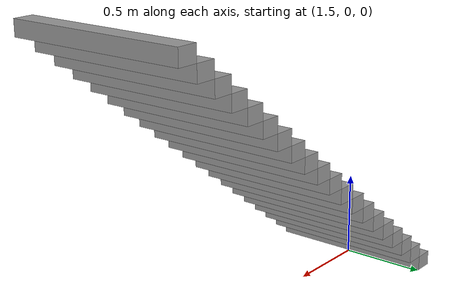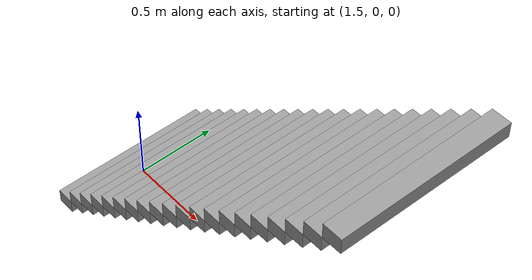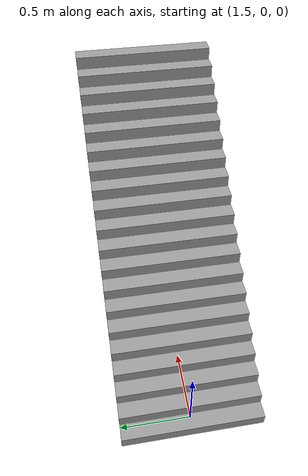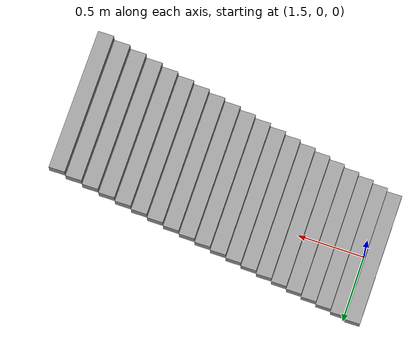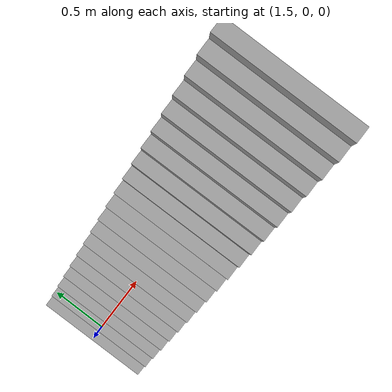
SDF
<?xml version='1.0'?>
<sdf version='1.7'>
  <model name='scaled_stairs'>
    <pose>1.8125 0 0 0 -0 0</pose>
    <link name='Stairs_1'>
      <visual name='Stairs_1_Visual_0'>
        <pose>-0.38125 -0 0.04375 0 -0 1.5708</pose>
        <geometry>
          <box>
            <size>1 0.1125 0.0875</size>
          </box>
        </geometry>
        <material>
          <script>
            <uri>file://media/materials/scripts/gazebo.material</uri>
            <name>Gazebo/Grey</name>
          </script>
          <ambient>1 1 1 1</ambient>
        </material>
        <meta>
          <layer>0</layer>
        </meta>
      </visual>
      <collision name='Stairs_1_Collision_0'>
        <geometry>
          <box>
            <size>1 0.1125 0.0875</size>
          </box>
        </geometry>
        <pose>-0.38125 -0 0.04375 0 -0 1.5708</pose>
      </collision>
      <visual name='Stairs_1_Visual_1'>
        <pose>-0.26875 -0 0.13125 0 -0 1.5708</pose>
        <geometry>
          <box>
            <size>1 0.1125 0.0875</size>
          </box>
        </geometry>
        <material>
          <script>
            <uri>file://media/materials/scripts/gazebo.material</uri>
            <name>Gazebo/Grey</name>
          </script>
          <ambient>1 1 1 1</ambient>
        </material>
        <meta>
          <layer>0</layer>
        </meta>
      </visual>
      <collision name='Stairs_1_Collision_1'>
        <geometry>
          <box>
            <size>1 0.1125 0.0875</size>
          </box>
        </geometry>
        <pose>-0.26875 -0 0.13125 0 -0 1.5708</pose>
      </collision>
      <visual name='Stairs_1_Visual_2'>
        <pose>-0.15625 -0 0.21875 0 -0 1.5708</pose>
        <geometry>
          <box>
            <size>1 0.1125 0.0875</size>
          </box>
        </geometry>
        <material>
          <script>
            <uri>file://media/materials/scripts/gazebo.material</uri>
            <name>Gazebo/Grey</name>
          </script>
          <ambient>1 1 1 1</ambient>
        </material>
        <meta>
          <layer>0</layer>
        </meta>
      </visual>
      <collision name='Stairs_1_Collision_2'>
        <geometry>
          <box>
            <size>1 0.1125 0.0875</size>
          </box>
        </geometry>
        <pose>-0.15625 -0 0.21875 0 -0 1.5708</pose>
      </collision>
      <visual name='Stairs_1_Visual_3'>
        <pose>-0.04375 -0 0.30625 0 -0 1.5708</pose>
        <geometry>
          <box>
            <size>1 0.1125 0.0875</size>
          </box>
        </geometry>
        <material>
          <script>
            <uri>file://media/materials/scripts/gazebo.material</uri>
            <name>Gazebo/Grey</name>
          </script>
          <ambient>1 1 1 1</ambient>
        </material>
        <meta>
          <layer>0</layer>
        </meta>
      </visual>
      <collision name='Stairs_1_Collision_3'>
        <geometry>
          <box>
            <size>1 0.1125 0.0875</size>
          </box>
        </geometry>
        <pose>-0.04375 -0 0.30625 0 -0 1.5708</pose>
      </collision>
      <visual name='Stairs_1_Visual_4'>
        <pose>0.06875 -0 0.39375 0 -0 1.5708</pose>
        <geometry>
          <box>
            <size>1 0.1125 0.0875</size>
          </box>
        </geometry>
        <material>
          <script>
            <uri>file://media/materials/scripts/gazebo.material</uri>
            <name>Gazebo/Grey</name>
          </script>
          <ambient>1 1 1 1</ambient>
        </material>
        <meta>
          <layer>0</layer>
        </meta>
      </visual>
      <collision name='Stairs_1_Collision_4'>
        <geometry>
          <box>
            <size>1 0.1125 0.0875</size>
          </box>
        </geometry>
        <pose>0.06875 -0 0.39375 0 -0 1.5708</pose>
      </collision>
      <visual name='Stairs_1_Visual_5'>
        <pose>0.18125 -0 0.48125 0 -0 1.5708</pose>
        <geometry>
          <box>
            <size>1 0.1125 0.0875</size>
          </box>
        </geometry>
        <material>
          <script>
            <uri>file://media/materials/scripts/gazebo.material</uri>
            <name>Gazebo/Grey</name>
          </script>
          <ambient>1 1 1 1</ambient>
        </material>
        <meta>
          <layer>0</layer>
        </meta>
      </visual>
      <collision name='Stairs_1_Collision_5'>
        <geometry>
          <box>
            <size>1 0.1125 0.0875</size>
          </box>
        </geometry>
        <pose>0.18125 -0 0.48125 0 -0 1.5708</pose>
      </collision>
      <visual name='Stairs_1_Visual_6'>
        <pose>0.29375 -0 0.56875 0 -0 1.5708</pose>
        <geometry>
          <box>
            <size>1 0.1125 0.0875</size>
          </box>
        </geometry>
        <material>
          <script>
            <uri>file://media/materials/scripts/gazebo.material</uri>
            <name>Gazebo/Grey</name>
          </script>
          <ambient>1 1 1 1</ambient>
        </material>
        <meta>
          <layer>0</layer>
        </meta>
      </visual>
      <collision name='Stairs_1_Collision_6'>
        <geometry>
          <box>
            <size>1 0.1125 0.0875</size>
          </box>
        </geometry>
        <pose>0.29375 -0 0.56875 0 -0 1.5708</pose>
      </collision>
      <visual name='Stairs_1_Visual_7'>
        <pose>0.40625 -0 0.65625 0 -0 1.5708</pose>
        <geometry>
          <box>
            <size>1 0.1125 0.0875</size>
          </box>
        </geometry>
        <material>
          <script>
            <uri>file://media/materials/scripts/gazebo.material</uri>
            <name>Gazebo/Grey</name>
          </script>
          <ambient>1 1 1 1</ambient>
        </material>
        <meta>
          <layer>0</layer>
        </meta>
      </visual>
      <collision name='Stairs_1_Collision_7'>
        <geometry>
          <box>
            <size>1 0.1125 0.0875</size>
          </box>
        </geometry>
        <pose>0.40625 -0 0.65625 0 -0 1.5708</pose>
      </collision>
      <visual name='Stairs_1_Visual_8'>
        <pose>0.51875 -0 0.74375 0 -0 1.5708</pose>
        <geometry>
          <box>
            <size>1 0.1125 0.0875</size>
          </box>
        </geometry>
        <material>
          <script>
            <uri>file://media/materials/scripts/gazebo.material</uri>
            <name>Gazebo/Grey</name>
          </script>
          <ambient>1 1 1 1</ambient>
        </material>
        <meta>
          <layer>0</layer>
        </meta>
      </visual>
      <collision name='Stairs_1_Collision_8'>
        <geometry>
          <box>
            <size>1 0.1125 0.0875</size>
          </box>
        </geometry>
        <pose>0.51875 -0 0.74375 0 -0 1.5708</pose>
      </collision>
      <visual name='Stairs_1_Visual_9'>
        <pose>0.63125 -0 0.83125 0 -0 1.5708</pose>
        <geometry>
          <box>
            <size>1 0.1125 0.0875</size>
          </box>
        </geometry>
        <material>
          <script>
            <uri>file://media/materials/scripts/gazebo.material</uri>
            <name>Gazebo/Grey</name>
          </script>
          <ambient>1 1 1 1</ambient>
        </material>
        <meta>
          <layer>0</layer>
        </meta>
      </visual>
      <collision name='Stairs_1_Collision_9'>
        <geometry>
          <box>
            <size>1 0.1125 0.0875</size>
          </box>
        </geometry>
        <pose>0.63125 -0 0.83125 0 -0 1.5708</pose>
      </collision>
      <visual name='Stairs_1_Visual_10'>
        <pose>0.74375 0 0.91875 0 -0 1.5708</pose>
        <geometry>
          <box>
            <size>1 0.1125 0.0875</size>
          </box>
        </geometry>
        <material>
          <script>
            <uri>file://media/materials/scripts/gazebo.material</uri>
            <name>Gazebo/Grey</name>
          </script>
          <ambient>1 1 1 1</ambient>
        </material>
        <meta>
          <layer>0</layer>
        </meta>
      </visual>
      <collision name='Stairs_1_Collision_10'>
        <geometry>
          <box>
            <size>1 0.1125 0.0875</size>
          </box>
        </geometry>
        <pose>0.74375 0 0.91875 0 -0 1.5708</pose>
      </collision>
      <visual name='Stairs_1_Visual_11'>
        <pose>0.85625 0 1.00625 0 -0 1.5708</pose>
        <geometry>
          <box>
            <size>1 0.1125 0.0875</size>
          </box>
        </geometry>
        <material>
          <script>
            <uri>file://media/materials/scripts/gazebo.material</uri>
            <name>Gazebo/Grey</name>
          </script>
          <ambient>1 1 1 1</ambient>
        </material>
        <meta>
          <layer>0</layer>
        </meta>
      </visual>
      <collision name='Stairs_1_Collision_11'>
        <geometry>
          <box>
            <size>1 0.1125 0.0875</size>
          </box>
        </geometry>
        <pose>0.85625 0 1.00625 0 -0 1.5708</pose>
      </collision>
      <visual name='Stairs_1_Visual_12'>
        <pose>0.96875 0 1.09375 0 -0 1.5708</pose>
        <geometry>
          <box>
            <size>1 0.1125 0.0875</size>
          </box>
        </geometry>
        <material>
          <script>
            <uri>file://media/materials/scripts/gazebo.material</uri>
            <name>Gazebo/Grey</name>
          </script>
          <ambient>1 1 1 1</ambient>
        </material>
        <meta>
          <layer>0</layer>
        </meta>
      </visual>
      <collision name='Stairs_1_Collision_12'>
        <geometry>
          <box>
            <size>1 0.1125 0.0875</size>
          </box>
        </geometry>
        <pose>0.96875 0 1.09375 0 -0 1.5708</pose>
      </collision>
      <visual name='Stairs_1_Visual_13'>
        <pose>1.08125 0 1.18125 0 -0 1.5708</pose>
        <geometry>
          <box>
            <size>1 0.1125 0.0875</size>
          </box>
        </geometry>
        <material>
          <script>
            <uri>file://media/materials/scripts/gazebo.material</uri>
            <name>Gazebo/Grey</name>
          </script>
          <ambient>1 1 1 1</ambient>
        </material>
        <meta>
          <layer>0</layer>
        </meta>
      </visual>
      <collision name='Stairs_1_Collision_13'>
        <geometry>
          <box>
            <size>1 0.1125 0.0875</size>
          </box>
        </geometry>
        <pose>1.08125 0 1.18125 0 -0 1.5708</pose>
      </collision>
      <visual name='Stairs_1_Visual_14'>
        <pose>1.19375 0 1.26875 0 -0 1.5708</pose>
        <geometry>
          <box>
            <size>1 0.1125 0.0875</size>
          </box>
        </geometry>
        <material>
          <script>
            <uri>file://media/materials/scripts/gazebo.material</uri>
            <name>Gazebo/Grey</name>
          </script>
          <ambient>1 1 1 1</ambient>
        </material>
        <meta>
          <layer>0</layer>
        </meta>
      </visual>
      <collision name='Stairs_1_Collision_14'>
        <geometry>
          <box>
            <size>1 0.1125 0.0875</size>
          </box>
        </geometry>
        <pose>1.19375 0 1.26875 0 -0 1.5708</pose>
      </collision>
      <visual name='Stairs_1_Visual_15'>
        <pose>1.30625 0 1.35625 0 -0 1.5708</pose>
        <geometry>
          <box>
            <size>1 0.1125 0.0875</size>
          </box>
        </geometry>
        <material>
          <script>
            <uri>file://media/materials/scripts/gazebo.material</uri>
            <name>Gazebo/Grey</name>
          </script>
          <ambient>1 1 1 1</ambient>
        </material>
        <meta>
          <layer>0</layer>
        </meta>
      </visual>
      <collision name='Stairs_1_Collision_15'>
        <geometry>
          <box>
            <size>1 0.1125 0.0875</size>
          </box>
        </geometry>
        <pose>1.30625 0 1.35625 0 -0 1.5708</pose>
      </collision>
      <visual name='Stairs_1_Visual_16'>
        <pose>1.41875 0 1.44375 0 -0 1.5708</pose>
        <geometry>
          <box>
            <size>1 0.1125 0.0875</size>
          </box>
        </geometry>
        <material>
          <script>
            <uri>file://media/materials/scripts/gazebo.material</uri>
            <name>Gazebo/Grey</name>
          </script>
          <ambient>1 1 1 1</ambient>
        </material>
        <meta>
          <layer>0</layer>
        </meta>
      </visual>
      <collision name='Stairs_1_Collision_16'>
        <geometry>
          <box>
            <size>1 0.1125 0.0875</size>
          </box>
        </geometry>
        <pose>1.41875 0 1.44375 0 -0 1.5708</pose>
      </collision>
      <visual name='Stairs_1_Visual_17'>
        <pose>1.53125 0 1.53125 0 -0 1.5708</pose>
        <geometry>
          <box>
            <size>1 0.1125 0.0875</size>
          </box>
        </geometry>
        <material>
          <script>
            <uri>file://media/materials/scripts/gazebo.material</uri>
            <name>Gazebo/Grey</name>
          </script>
          <ambient>1 1 1 1</ambient>
        </material>
        <meta>
          <layer>0</layer>
        </meta>
      </visual>
      <collision name='Stairs_1_Collision_17'>
        <geometry>
          <box>
            <size>1 0.1125 0.0875</size>
          </box>
        </geometry>
        <pose>1.53125 0 1.53125 0 -0 1.5708</pose>
      </collision>
      <visual name='Stairs_1_Visual_18'>
        <pose>1.64375 0 1.61875 0 -0 1.5708</pose>
        <geometry>
          <box>
            <size>1 0.1125 0.0875</size>
          </box>
        </geometry>
        <material>
          <script>
            <uri>file://media/materials/scripts/gazebo.material</uri>
            <name>Gazebo/Grey</name>
          </script>
          <ambient>1 1 1 1</ambient>
        </material>
        <meta>
          <layer>0</layer>
        </meta>
      </visual>
      <collision name='Stairs_1_Collision_18'>
        <geometry>
          <box>
            <size>1 0.1125 0.0875</size>
          </box>
        </geometry>
        <pose>1.64375 0 1.61875 0 -0 1.5708</pose>
      </collision>
      <visual name='Stairs_1_Visual_19'>
        <pose>1.75625 0 1.70625 0 -0 1.5708</pose>
        <geometry>
          <box>
            <size>1 0.1125 0.0875</size>
          </box>
        </geometry>
        <material>
          <script>
            <uri>file://media/materials/scripts/gazebo.material</uri>
            <name>Gazebo/Grey</name>
          </script>
          <ambient>1 1 1 1</ambient>
        </material>
        <meta>
          <layer>0</layer>
        </meta>
      </visual>
      <collision name='Stairs_1_Collision_19'>
        <geometry>
          <box>
            <size>1 0.1125 0.0875</size>
          </box>
        </geometry>
        <pose>1.75625 0 1.70625 0 -0 1.5708</pose>
      </collision>
    </link>
    <static>1</static>
  </model>
</sdf>
